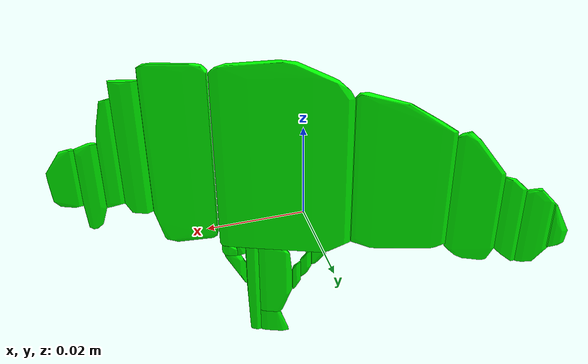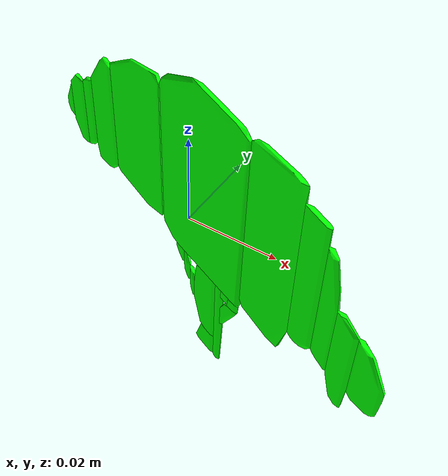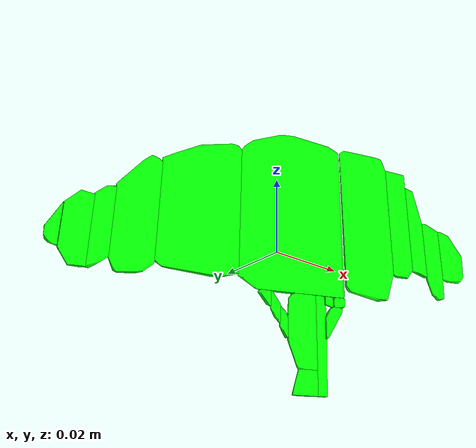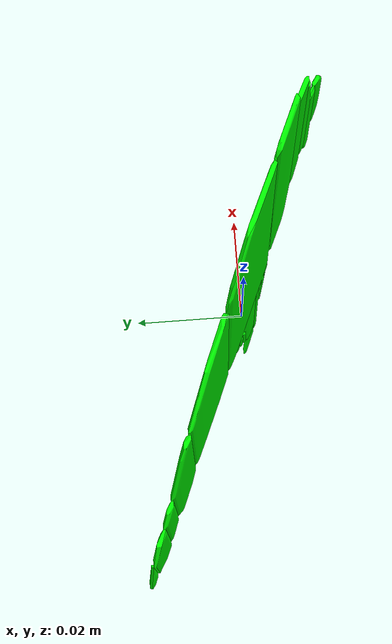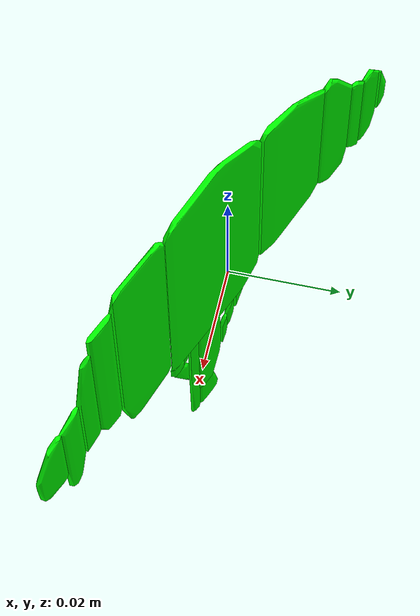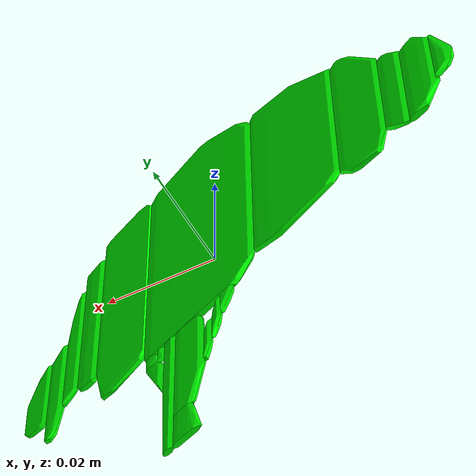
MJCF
<mujoco model="shapenetsem37">
  <asset>
    <mesh file="meshes/shapenetsem37/shapenetsem37_0.stl" name="shapenetsem37_0" scale="1 1 1"/>
    <mesh file="meshes/shapenetsem37/shapenetsem37_1.stl" name="shapenetsem37_1" scale="1 1 1"/>
    <mesh file="meshes/shapenetsem37/shapenetsem37_2.stl" name="shapenetsem37_2" scale="1 1 1"/>
    <mesh file="meshes/shapenetsem37/shapenetsem37_3.stl" name="shapenetsem37_3" scale="1 1 1"/>
    <mesh file="meshes/shapenetsem37/shapenetsem37_4.stl" name="shapenetsem37_4" scale="1 1 1"/>
    <mesh file="meshes/shapenetsem37/shapenetsem37_5.stl" name="shapenetsem37_5" scale="1 1 1"/>
    <mesh file="meshes/shapenetsem37/shapenetsem37_6.stl" name="shapenetsem37_6" scale="1 1 1"/>
    <mesh file="meshes/shapenetsem37/shapenetsem37_7.stl" name="shapenetsem37_7" scale="1 1 1"/>
    <mesh file="meshes/shapenetsem37/shapenetsem37_8.stl" name="shapenetsem37_8" scale="1 1 1"/>
    <mesh file="meshes/shapenetsem37/shapenetsem37_9.stl" name="shapenetsem37_9" scale="1 1 1"/>
    <mesh file="meshes/shapenetsem37/shapenetsem37_10.stl" name="shapenetsem37_10" scale="1 1 1"/>
    <mesh file="meshes/shapenetsem37/shapenetsem37_11.stl" name="shapenetsem37_11" scale="1 1 1"/>
    <mesh file="meshes/shapenetsem37/shapenetsem37_12.stl" name="shapenetsem37_12" scale="1 1 1"/>
    <mesh file="meshes/shapenetsem37/shapenetsem37_13.stl" name="shapenetsem37_13" scale="1 1 1"/>
    <mesh file="meshes/shapenetsem37/shapenetsem37_14.stl" name="shapenetsem37_14" scale="1 1 1"/>
    <mesh file="meshes/shapenetsem37/shapenetsem37_15.stl" name="shapenetsem37_15" scale="1 1 1"/>
    <mesh file="meshes/shapenetsem37/shapenetsem37_16.stl" name="shapenetsem37_16" scale="1 1 1"/>
    <mesh file="meshes/shapenetsem37/shapenetsem37_17.stl" name="shapenetsem37_17" scale="1 1 1"/>
    <mesh file="meshes/shapenetsem37/shapenetsem37_18.stl" name="shapenetsem37_18" scale="1 1 1"/>
    <mesh file="meshes/shapenetsem37/shapenetsem37_19.stl" name="shapenetsem37_19" scale="1 1 1"/>
  </asset>
  <worldbody>
    <body>
      <body name="collision">
        <geom pos="0 0 0" mesh="shapenetsem37_0" type="mesh" solimp="0.998 0.998 0.001" solref="0.001 1" density="100" friction="0.95 0.3 0.1" rgba="0 1 0 1" group="1" condim="4"/>
        <geom pos="0 0 0" mesh="shapenetsem37_1" type="mesh" solimp="0.998 0.998 0.001" solref="0.001 1" density="100" friction="0.95 0.3 0.1" rgba="0 1 0 1" group="1" condim="4"/>
        <geom pos="0 0 0" mesh="shapenetsem37_2" type="mesh" solimp="0.998 0.998 0.001" solref="0.001 1" density="100" friction="0.95 0.3 0.1" rgba="0 1 0 1" group="1" condim="4"/>
        <geom pos="0 0 0" mesh="shapenetsem37_3" type="mesh" solimp="0.998 0.998 0.001" solref="0.001 1" density="100" friction="0.95 0.3 0.1" rgba="0 1 0 1" group="1" condim="4"/>
        <geom pos="0 0 0" mesh="shapenetsem37_4" type="mesh" solimp="0.998 0.998 0.001" solref="0.001 1" density="100" friction="0.95 0.3 0.1" rgba="0 1 0 1" group="1" condim="4"/>
        <geom pos="0 0 0" mesh="shapenetsem37_5" type="mesh" solimp="0.998 0.998 0.001" solref="0.001 1" density="100" friction="0.95 0.3 0.1" rgba="0 1 0 1" group="1" condim="4"/>
        <geom pos="0 0 0" mesh="shapenetsem37_6" type="mesh" solimp="0.998 0.998 0.001" solref="0.001 1" density="100" friction="0.95 0.3 0.1" rgba="0 1 0 1" group="1" condim="4"/>
        <geom pos="0 0 0" mesh="shapenetsem37_7" type="mesh" solimp="0.998 0.998 0.001" solref="0.001 1" density="100" friction="0.95 0.3 0.1" rgba="0 1 0 1" group="1" condim="4"/>
        <geom pos="0 0 0" mesh="shapenetsem37_8" type="mesh" solimp="0.998 0.998 0.001" solref="0.001 1" density="100" friction="0.95 0.3 0.1" rgba="0 1 0 1" group="1" condim="4"/>
        <geom pos="0 0 0" mesh="shapenetsem37_9" type="mesh" solimp="0.998 0.998 0.001" solref="0.001 1" density="100" friction="0.95 0.3 0.1" rgba="0 1 0 1" group="1" condim="4"/>
        <geom pos="0 0 0" mesh="shapenetsem37_10" type="mesh" solimp="0.998 0.998 0.001" solref="0.001 1" density="100" friction="0.95 0.3 0.1" rgba="0 1 0 1" group="1" condim="4"/>
        <geom pos="0 0 0" mesh="shapenetsem37_11" type="mesh" solimp="0.998 0.998 0.001" solref="0.001 1" density="100" friction="0.95 0.3 0.1" rgba="0 1 0 1" group="1" condim="4"/>
        <geom pos="0 0 0" mesh="shapenetsem37_12" type="mesh" solimp="0.998 0.998 0.001" solref="0.001 1" density="100" friction="0.95 0.3 0.1" rgba="0 1 0 1" group="1" condim="4"/>
        <geom pos="0 0 0" mesh="shapenetsem37_13" type="mesh" solimp="0.998 0.998 0.001" solref="0.001 1" density="100" friction="0.95 0.3 0.1" rgba="0 1 0 1" group="1" condim="4"/>
        <geom pos="0 0 0" mesh="shapenetsem37_14" type="mesh" solimp="0.998 0.998 0.001" solref="0.001 1" density="100" friction="0.95 0.3 0.1" rgba="0 1 0 1" group="1" condim="4"/>
        <geom pos="0 0 0" mesh="shapenetsem37_15" type="mesh" solimp="0.998 0.998 0.001" solref="0.001 1" density="100" friction="0.95 0.3 0.1" rgba="0 1 0 1" group="1" condim="4"/>
        <geom pos="0 0 0" mesh="shapenetsem37_16" type="mesh" solimp="0.998 0.998 0.001" solref="0.001 1" density="100" friction="0.95 0.3 0.1" rgba="0 1 0 1" group="1" condim="4"/>
        <geom pos="0 0 0" mesh="shapenetsem37_17" type="mesh" solimp="0.998 0.998 0.001" solref="0.001 1" density="100" friction="0.95 0.3 0.1" rgba="0 1 0 1" group="1" condim="4"/>
        <geom pos="0 0 0" mesh="shapenetsem37_18" type="mesh" solimp="0.998 0.998 0.001" solref="0.001 1" density="100" friction="0.95 0.3 0.1" rgba="0 1 0 1" group="1" condim="4"/>
        <geom pos="0 0 0" mesh="shapenetsem37_19" type="mesh" solimp="0.998 0.998 0.001" solref="0.001 1" density="100" friction="0.95 0.3 0.1" rgba="0 1 0 1" group="1" condim="4"/>
      </body>
      <body name="visual">
        <geom pos="0 0 0" mesh="shapenetsem37_0" type="mesh" rgba="0 1 0 1" conaffinity="0" contype="0" group="0" mass="0.0001"/>
        <geom pos="0 0 0" mesh="shapenetsem37_1" type="mesh" rgba="0 1 0 1" conaffinity="0" contype="0" group="0" mass="0.0001"/>
        <geom pos="0 0 0" mesh="shapenetsem37_2" type="mesh" rgba="0 1 0 1" conaffinity="0" contype="0" group="0" mass="0.0001"/>
        <geom pos="0 0 0" mesh="shapenetsem37_3" type="mesh" rgba="0 1 0 1" conaffinity="0" contype="0" group="0" mass="0.0001"/>
        <geom pos="0 0 0" mesh="shapenetsem37_4" type="mesh" rgba="0 1 0 1" conaffinity="0" contype="0" group="0" mass="0.0001"/>
        <geom pos="0 0 0" mesh="shapenetsem37_5" type="mesh" rgba="0 1 0 1" conaffinity="0" contype="0" group="0" mass="0.0001"/>
        <geom pos="0 0 0" mesh="shapenetsem37_6" type="mesh" rgba="0 1 0 1" conaffinity="0" contype="0" group="0" mass="0.0001"/>
        <geom pos="0 0 0" mesh="shapenetsem37_7" type="mesh" rgba="0 1 0 1" conaffinity="0" contype="0" group="0" mass="0.0001"/>
        <geom pos="0 0 0" mesh="shapenetsem37_8" type="mesh" rgba="0 1 0 1" conaffinity="0" contype="0" group="0" mass="0.0001"/>
        <geom pos="0 0 0" mesh="shapenetsem37_9" type="mesh" rgba="0 1 0 1" conaffinity="0" contype="0" group="0" mass="0.0001"/>
        <geom pos="0 0 0" mesh="shapenetsem37_10" type="mesh" rgba="0 1 0 1" conaffinity="0" contype="0" group="0" mass="0.0001"/>
        <geom pos="0 0 0" mesh="shapenetsem37_11" type="mesh" rgba="0 1 0 1" conaffinity="0" contype="0" group="0" mass="0.0001"/>
        <geom pos="0 0 0" mesh="shapenetsem37_12" type="mesh" rgba="0 1 0 1" conaffinity="0" contype="0" group="0" mass="0.0001"/>
        <geom pos="0 0 0" mesh="shapenetsem37_13" type="mesh" rgba="0 1 0 1" conaffinity="0" contype="0" group="0" mass="0.0001"/>
        <geom pos="0 0 0" mesh="shapenetsem37_14" type="mesh" rgba="0 1 0 1" conaffinity="0" contype="0" group="0" mass="0.0001"/>
        <geom pos="0 0 0" mesh="shapenetsem37_15" type="mesh" rgba="0 1 0 1" conaffinity="0" contype="0" group="0" mass="0.0001"/>
        <geom pos="0 0 0" mesh="shapenetsem37_16" type="mesh" rgba="0 1 0 1" conaffinity="0" contype="0" group="0" mass="0.0001"/>
        <geom pos="0 0 0" mesh="shapenetsem37_17" type="mesh" rgba="0 1 0 1" conaffinity="0" contype="0" group="0" mass="0.0001"/>
        <geom pos="0 0 0" mesh="shapenetsem37_18" type="mesh" rgba="0 1 0 1" conaffinity="0" contype="0" group="0" mass="0.0001"/>
        <geom pos="0 0 0" mesh="shapenetsem37_19" type="mesh" rgba="0 1 0 1" conaffinity="0" contype="0" group="0" mass="0.0001"/>
      </body>
      <site rgba="0 0 0 0" size="0.005" pos="0 0 -0.06" name="bottom_site"/>
      <site rgba="0 0 0 0" size="0.005" pos="0 0 0.04" name="top_site"/>
      <site rgba="0 0 0 0" size="0.005" pos="0.025 0.025 0" name="horizontal_radius_site"/>
    </body>
  </worldbody>
</mujoco>
